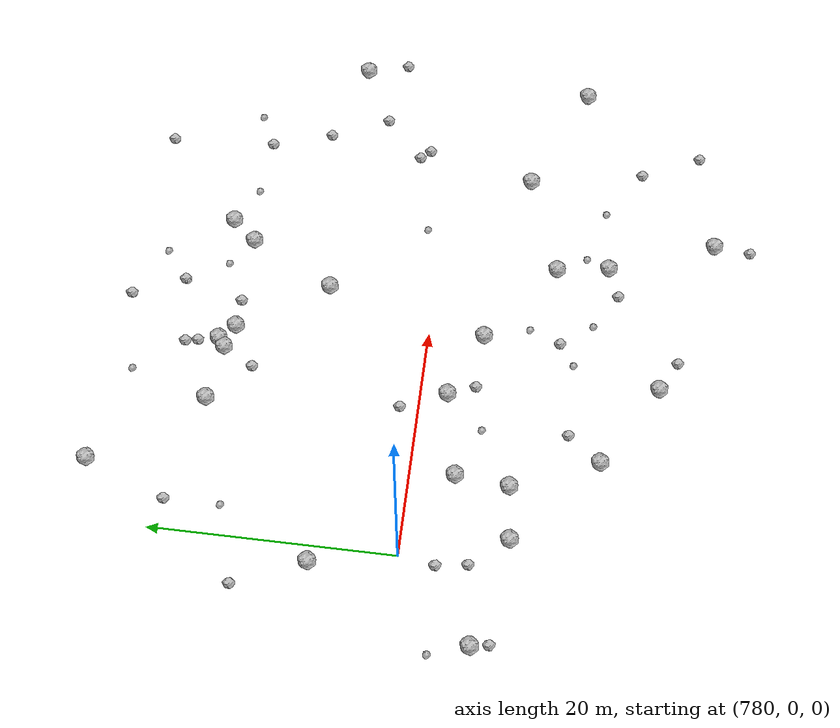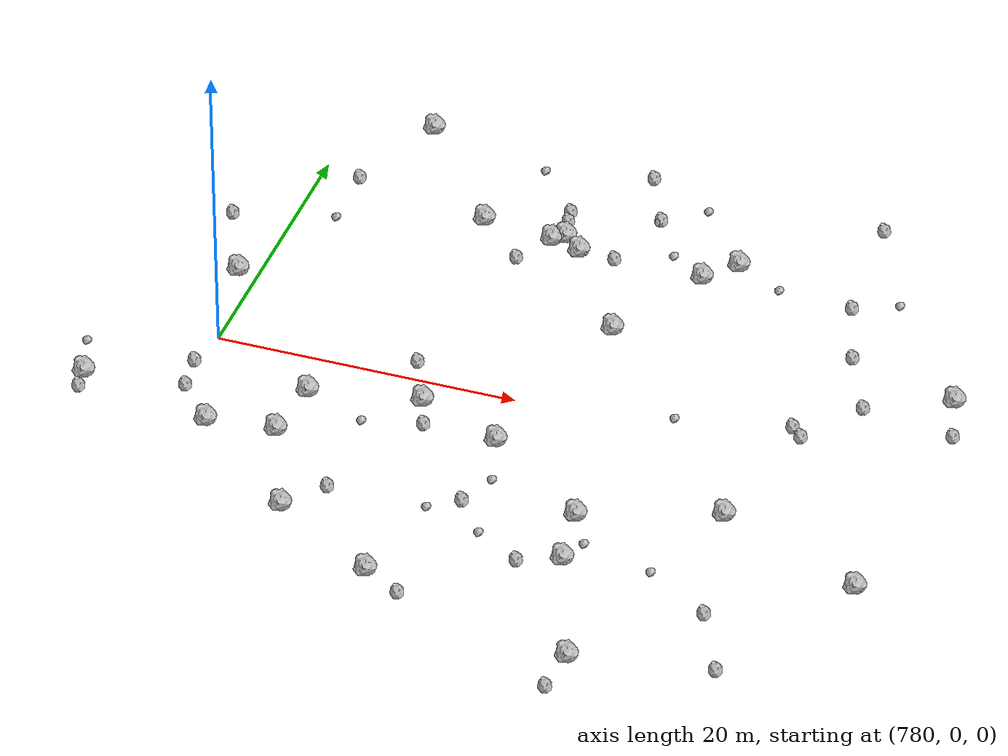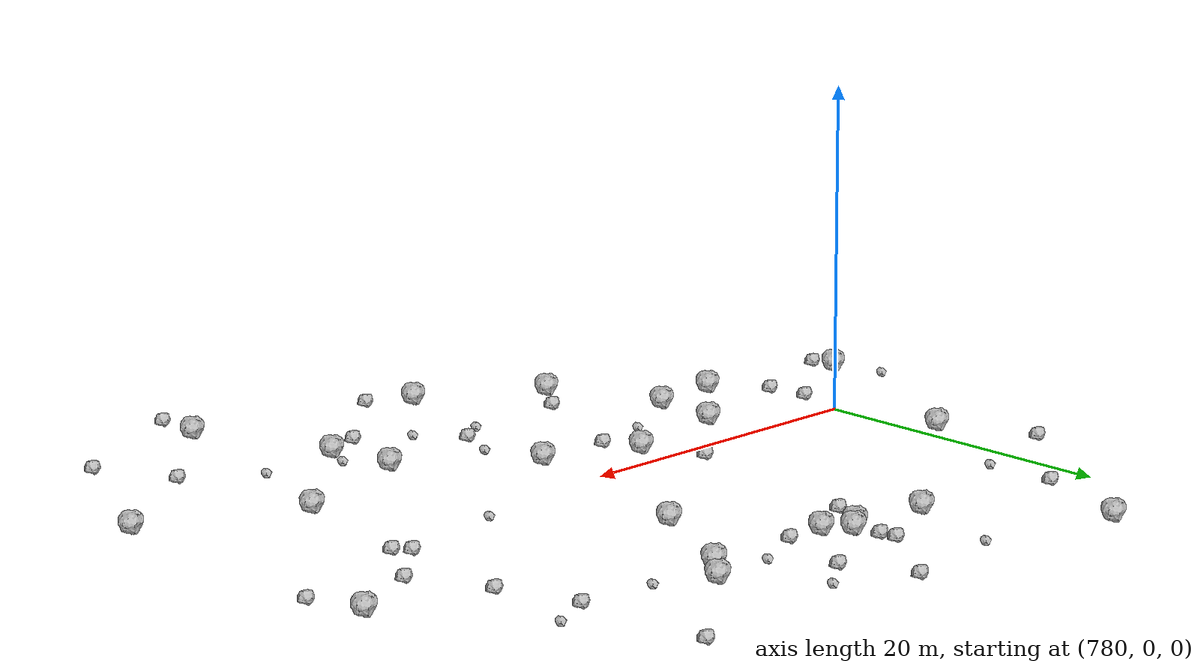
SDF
<sdf version="1.6">
 <world name="default">
  <include><uri>model://sun</uri></include>
  <model name="rock1_20_4">
   <include><uri>model://rock1</uri><pose>778.6667409668792 6.960204776235095 0.5 0 0 0</pose></include>
  </model>
  <model name="rock1_20_5">
   <include><uri>model://rock1</uri><pose>826.2636876520584 8.706971565554191 0.5 0 0 0</pose></include>
  </model>
  <model name="rock1_20_6">
   <include><uri>model://rock1</uri><pose>797.4602461916218 17.30300870195977 0.5 0 0 0</pose></include>
  </model>
  <model name="rock1_20_7">
   <include><uri>model://rock1</uri><pose>797.0521308402581 -19.29521934467617 0.5 0 0 0</pose></include>
  </model>
  <model name="rock1_20_8">
   <include><uri>model://rock1</uri><pose>800.3184775217894 -4.543351970570182 0.5 0 0 0</pose></include>
  </model>
  <model name="rock1_20_9">
   <include><uri>model://rock1</uri><pose>811.3594567725868 -23.10930617369469 0.5 0 0 0</pose></include>
  </model>
  <model name="rock1_20_10">
   <include><uri>model://rock1</uri><pose>794.5801929313603 -2.1641196872269965 0.5 0 0 0</pose></include>
  </model>
  <model name="rock1_20_11">
   <include><uri>model://rock1</uri><pose>789.8874506833993 -15.017709927741919 0.5 0 0 0</pose></include>
  </model>
  <model name="rock1_20_12">
   <include><uri>model://rock1</uri><pose>807.2104204820754 15.930680961686335 0.5 0 0 0</pose></include>
  </model>
  <model name="rock1_20_13">
   <include><uri>model://rock1</uri><pose>787.4087227458484 -3.6050512393845366 0.5 0 0 0</pose></include>
  </model>
  <model name="rock1_20_14">
   <include><uri>model://rock1</uri><pose>825.815794756817 -11.145880553289004 0.5 0 0 0</pose></include>
  </model>
  <model name="rock1_20_15">
   <include><uri>model://rock1</uri><pose>808.0694804948986 -14.34093168284462 0.5 0 0 0</pose></include>
  </model>
  <model name="rock1_20_16">
   <include><uri>model://rock1</uri><pose>798.775822609329 16.086127280192315 0.5 0 0 0</pose></include>
  </model>
  <model name="rock1_20_17">
   <include><uri>model://rock1</uri><pose>807.4481808519952 -9.9939422321211 0.5 0 0 0</pose></include>
  </model>
  <model name="rock1_20_18">
   <include><uri>model://rock1</uri><pose>785.3091398907279 25.94345812179435 0.5 0 0 0</pose></include>
  </model>
  <model name="rock1_20_19">
   <include><uri>model://rock1</uri><pose>782.403423526795 -8.495693330640837 0.5 0 0 0</pose></include>
  </model>
  <model name="rock1_20_20">
   <include><uri>model://rock1</uri><pose>796.6959905899151 16.727946731421824 0.5 0 0 0</pose></include>
  </model>
  <model name="rock1_20_21">
   <include><uri>model://rock1</uri><pose>786.9262417603956 -8.001292750149908 0.5 0 0 0</pose></include>
  </model>
  <model name="rock1_20_22">
   <include><uri>model://rock1</uri><pose>816.1000264594861 -6.98091153720085 0.5 0 0 0</pose></include>
  </model>
  <model name="rock1_20_23">
   <include><uri>model://rock1</uri><pose>809.0480898575033 17.98775960113263 0.5 0 0 0</pose></include>
  </model>
  <model name="rock1_20_24">
   <include><uri>model://rock1</uri><pose>803.494412665779 8.872416297666959 0.5 0 0 0</pose></include>
  </model>
  <model name="rock1_20_25">
   <include><uri>model://rock1</uri><pose>791.8389081293672 17.381697712714825 0.5 0 0 0</pose></include>
  </model>
  <model name="rock1_20_26">
   <include><uri>model://rock1</uri><pose>773.3076436252996 -6.3557614531252185 0.5 0 0 0</pose></include>
  </model>
  <model name="rock2_20_0">
   <include><uri>model://rock2</uri><pose>773.5563299419953 -7.823770043501909 0.3 0 0 0</pose></include>
  </model>
  <model name="rock2_20_1">
   <include><uri>model://rock2</uri><pose>817.4270934817837 2.909416532052809 0.3 0 0 0</pose></include>
  </model>
  <model name="rock2_20_2">
   <include><uri>model://rock2</uri><pose>776.1004564907316 12.711669600683656 0.3 0 0 0</pose></include>
  </model>
  <model name="rock2_20_3">
   <include><uri>model://rock2</uri><pose>779.5144762141348 -2.959604842445941 0.3 0 0 0</pose></include>
  </model>
  <model name="rock2_20_4">
   <include><uri>model://rock2</uri><pose>791.9685711272269 -12.292244093201209 0.3 0 0 0</pose></include>
  </model>
  <model name="rock2_20_5">
   <include><uri>model://rock2</uri><pose>811.0344249741239 -26.165215919450528 0.3 0 0 0</pose></include>
  </model>
  <model name="rock2_20_6">
   <include><uri>model://rock2</uri><pose>805.4255895101248 -15.354375733509167 0.3 0 0 0</pose></include>
  </model>
  <model name="rock2_20_7">
   <include><uri>model://rock2</uri><pose>797.0643303353095 19.002283542060518 0.3 0 0 0</pose></include>
  </model>
  <model name="rock2_20_8">
   <include><uri>model://rock2</uri><pose>817.2881247022004 15.981480005928717 0.3 0 0 0</pose></include>
  </model>
  <model name="rock2_20_9">
   <include><uri>model://rock2</uri><pose>827.1860873267813 5.231667813320172 0.3 0 0 0</pose></include>
  </model>
  <model name="rock2_20_10">
   <include><uri>model://rock2</uri><pose>782.5589649139093 19.12969733668143 0.3 0 0 0</pose></include>
  </model>
  <model name="rock2_20_11">
   <include><uri>model://rock2</uri><pose>779.8851589972126 -5.509908296365619 0.3 0 0 0</pose></include>
  </model>
  <model name="rock2_20_12">
   <include><uri>model://rock2</uri><pose>796.8769474090032 20.0365871566012 0.3 0 0 0</pose></include>
  </model>
  <model name="rock2_20_13">
   <include><uri>model://rock2</uri><pose>799.6283664635697 -20.688118088099852 0.3 0 0 0</pose></include>
  </model>
  <model name="rock2_20_14">
   <include><uri>model://rock2</uri><pose>800.8590745461172 25.327801490906545 0.3 0 0 0</pose></include>
  </model>
  <model name="rock2_20_15">
   <include><uri>model://rock2</uri><pose>792.9293631515366 1.5707643048926556 0.3 0 0 0</pose></include>
  </model>
  <model name="rock2_20_16">
   <include><uri>model://rock2</uri><pose>816.8049229711276 24.691900179024366 0.3 0 0 0</pose></include>
  </model>
  <model name="rock2_20_17">
   <include><uri>model://rock2</uri><pose>802.7523136160604 21.08032498937925 0.3 0 0 0</pose></include>
  </model>
  <model name="rock2_20_18">
   <include><uri>model://rock2</uri><pose>818.8636944127604 10.971048987276568 0.3 0 0 0</pose></include>
  </model>
  <model name="rock2_20_19">
   <include><uri>model://rock2</uri><pose>795.1551130643617 14.14528182088074 0.3 0 0 0</pose></include>
  </model>
  <model name="rock2_20_20">
   <include><uri>model://rock2</uri><pose>801.2137055854824 16.035881101003447 0.3 0 0 0</pose></include>
  </model>
  <model name="rock2_20_21">
   <include><uri>model://rock2</uri><pose>795.4644392821996 -4.40132241399273 0.3 0 0 0</pose></include>
  </model>
  <model name="rock2_20_22">
   <include><uri>model://rock2</uri><pose>821.0192925870999 6.176154802580548 0.3 0 0 0</pose></include>
  </model>
  <model name="rock2_20_23">
   <include><uri>model://rock2</uri><pose>817.8987534557426 -16.535066519326257 0.3 0 0 0</pose></include>
  </model>
  <model name="rock2_20_24">
   <include><uri>model://rock2</uri><pose>818.20455395957 2.0901701537898205 0.3 0 0 0</pose></include>
  </model>
  <model name="rock2_20_25">
   <include><uri>model://rock2</uri><pose>800.3170401428359 -10.88098108414934 0.3 0 0 0</pose></include>
  </model>
  <model name="rock2_20_26">
   <include><uri>model://rock2</uri><pose>820.2177861673371 -21.404860119997878 0.3 0 0 0</pose></include>
  </model>
  <model name="rock3_20_0">
   <include><uri>model://rock3</uri><pose>772.2254058436502 -3.204820504542809 0.2 0 0 0</pose></include>
  </model>
  <model name="rock3_20_1">
   <include><uri>model://rock3</uri><pose>802.6086959182406 20.88704865501689 0.2 0 0 0</pose></include>
  </model>
  <model name="rock3_20_2">
   <include><uri>model://rock3</uri><pose>805.3158800439046 23.03117968161837 0.2 0 0 0</pose></include>
  </model>
  <model name="rock3_20_3">
   <include><uri>model://rock3</uri><pose>802.3006124746273 -13.520980792618246 0.2 0 0 0</pose></include>
  </model>
  <model name="rock3_20_4">
   <include><uri>model://rock3</uri><pose>782.5543688193856 14.54210050004086 0.2 0 0 0</pose></include>
  </model>
  <model name="rock3_20_5">
   <include><uri>model://rock3</uri><pose>793.7836347005235 23.8773944876652 0.2 0 0 0</pose></include>
  </model>
  <model name="rock3_20_6">
   <include><uri>model://rock3</uri><pose>804.6999657933039 17.656338950132117 0.2 0 0 0</pose></include>
  </model>
  <model name="rock3_20_7">
   <include><uri>model://rock3</uri><pose>798.4068561445616 -12.18918544729988 0.2 0 0 0</pose></include>
  </model>
  <model name="rock3_20_8">
   <include><uri>model://rock3</uri><pose>791.606298438007 -5.32349056776501 0.2 0 0 0</pose></include>
  </model>
  <model name="rock3_20_9">
   <include><uri>model://rock3</uri><pose>812.2577574104919 16.315416225989637 0.2 0 0 0</pose></include>
  </model>
  <model name="rock3_20_10">
   <include><uri>model://rock3</uri><pose>813.5374965904596 -13.76565041781513 0.2 0 0 0</pose></include>
  </model>
  <model name="rock3_20_11">
   <include><uri>model://rock3</uri><pose>808.797164240822 -12.477732791548519 0.2 0 0 0</pose></include>
  </model>
  <model name="rock3_20_12">
   <include><uri>model://rock3</uri><pose>801.3512967756516 -8.315198819420363 0.2 0 0 0</pose></include>
  </model>
  <model name="rock3_20_13">
   <include><uri>model://rock3</uri><pose>810.1070586750224 1.3291517350409237 0.2 0 0 0</pose></include>
  </model>
  <model name="rock3_20_14">
   <include><uri>model://rock3</uri><pose>820.0791207607906 17.28317786316405 0.2 0 0 0</pose></include>
  </model>
 </world>
</sdf>
